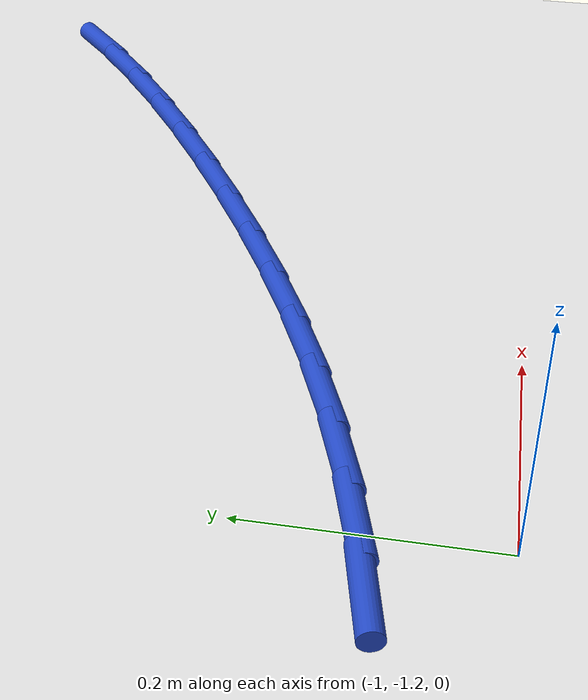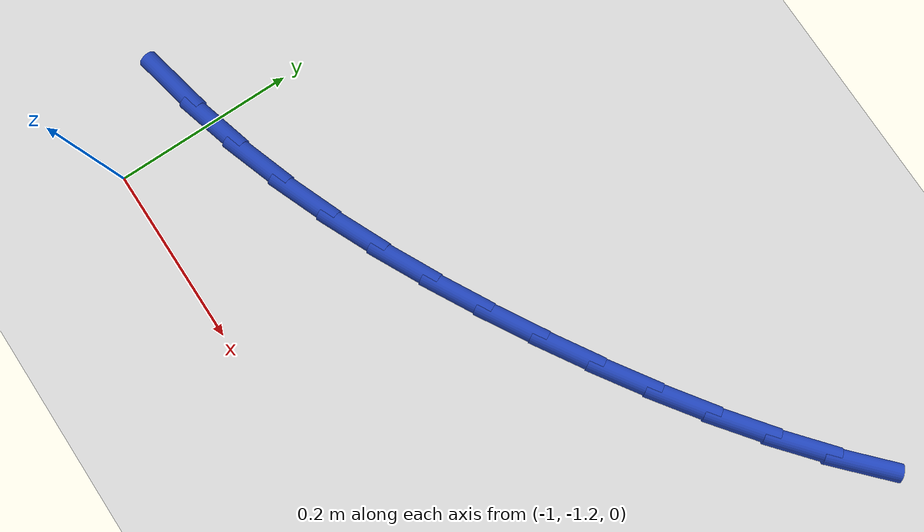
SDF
<sdf version="1.6">
 <world name="default">
  <model name="ground_plane">
   <static>1</static>
   <link name="link">
    <collision name="collision">
     <geometry><plane><normal>0 0 1</normal><size>100 100</size></plane></geometry>
     <surface><friction><ode><mu>100</mu><mu2>50</mu2></ode></friction></surface>
    </collision>
    <visual name="visual">
     <cast_shadows>0</cast_shadows>
     <geometry><plane><normal>0 0 1</normal><size>100 100</size></plane></geometry>
     <material>
      <script><uri>file://media/materials/scripts/gazebo.material</uri><name>Gazebo/WhiteGlow</name></script>
     </material>
    </visual>
   </link>
  </model>
  <model name="line">
   <link name="link_84">
    <pose>-1.0555271077297053 -1.1015150530781048 0.01 0 1.57 0.21131374475451825</pose>
    <collision name="collision">
     <geometry><cylinder><radius>0.01</radius><length>0.08</length></cylinder></geometry>
    </collision>
    <visual name="visual">
     <material>
      <script><name>Gazebo/Blue</name><uri>file://media/materials/scripts/gazebo.material</uri></script>
     </material>
     <geometry><cylinder><radius>0.01</radius><length>0.08</length></cylinder></geometry>
    </visual>
   </link>
   <link name="link_85">
    <pose>-0.9938081638484251 -1.0882753362107238 0.01 0 1.57 0.27120433528052956</pose>
    <collision name="collision">
     <geometry><cylinder><radius>0.01</radius><length>0.08</length></cylinder></geometry>
    </collision>
    <visual name="visual">
     <material>
      <script><name>Gazebo/Blue</name><uri>file://media/materials/scripts/gazebo.material</uri></script>
     </material>
     <geometry><cylinder><radius>0.01</radius><length>0.08</length></cylinder></geometry>
    </visual>
   </link>
   <link name="link_86">
    <pose>-0.9331563969446333 -1.0714108000525764 0.01 0 1.57 0.3261330889908135</pose>
    <collision name="collision">
     <geometry><cylinder><radius>0.01</radius><length>0.08</length></cylinder></geometry>
    </collision>
    <visual name="visual">
     <material>
      <script><name>Gazebo/Blue</name><uri>file://media/materials/scripts/gazebo.material</uri></script>
     </material>
     <geometry><cylinder><radius>0.01</radius><length>0.08</length></cylinder></geometry>
    </visual>
   </link>
   <link name="link_87">
    <pose>-0.873512858399665 -1.0512387605841795 0.01 0 1.57 0.37586425813499214</pose>
    <collision name="collision">
     <geometry><cylinder><radius>0.01</radius><length>0.08</length></cylinder></geometry>
    </collision>
    <visual name="visual">
     <material>
      <script><name>Gazebo/Blue</name><uri>file://media/materials/scripts/gazebo.material</uri></script>
     </material>
     <geometry><cylinder><radius>0.01</radius><length>0.08</length></cylinder></geometry>
    </visual>
   </link>
   <link name="link_88">
    <pose>-0.8148185995948587 -1.0280765337860496 0.01 0 1.57 0.42030935409472464</pose>
    <collision name="collision">
     <geometry><cylinder><radius>0.01</radius><length>0.08</length></cylinder></geometry>
    </collision>
    <visual name="visual">
     <material>
      <script><name>Gazebo/Blue</name><uri>file://media/materials/scripts/gazebo.material</uri></script>
     </material>
     <geometry><cylinder><radius>0.01</radius><length>0.08</length></cylinder></geometry>
    </visual>
   </link>
   <link name="link_89">
    <pose>-0.7570146719115483 -1.002241435638702 0.01 0 1.57 0.45948796046870727</pose>
    <collision name="collision">
     <geometry><cylinder><radius>0.01</radius><length>0.08</length></cylinder></geometry>
    </collision>
    <visual name="visual">
     <material>
      <script><name>Gazebo/Blue</name><uri>file://media/materials/scripts/gazebo.material</uri></script>
     </material>
     <geometry><cylinder><radius>0.01</radius><length>0.08</length></cylinder></geometry>
    </visual>
   </link>
   <link name="link_90">
    <pose>-0.7000421267310727 -0.9740507821226548 0.01 0 1.57 0.493490116932837</pose>
    <collision name="collision">
     <geometry><cylinder><radius>0.01</radius><length>0.08</length></cylinder></geometry>
    </collision>
    <visual name="visual">
     <material>
      <script><name>Gazebo/Blue</name><uri>file://media/materials/scripts/gazebo.material</uri></script>
     </material>
     <geometry><cylinder><radius>0.01</radius><length>0.08</length></cylinder></geometry>
    </visual>
   </link>
   <link name="link_91">
    <pose>-0.6438420154347665 -0.943821889218423 0.01 0 1.57 0.522443644792108</pose>
    <collision name="collision">
     <geometry><cylinder><radius>0.01</radius><length>0.08</length></cylinder></geometry>
    </collision>
    <visual name="visual">
     <material>
      <script><name>Gazebo/Blue</name><uri>file://media/materials/scripts/gazebo.material</uri></script>
     </material>
     <geometry><cylinder><radius>0.01</radius><length>0.08</length></cylinder></geometry>
    </visual>
   </link>
   <link name="link_92">
    <pose>-0.5883553894039677 -0.9118720729065243 0.01 0 1.57 0.5477929707720183</pose>
    <collision name="collision">
     <geometry><cylinder><radius>0.01</radius><length>0.08</length></cylinder></geometry>
    </collision>
    <visual name="visual">
     <material>
      <script><name>Gazebo/Blue</name><uri>file://media/materials/scripts/gazebo.material</uri></script>
     </material>
     <geometry><cylinder><radius>0.01</radius><length>0.08</length></cylinder></geometry>
    </visual>
   </link>
   <link name="link_93">
    <pose>-0.5335784454164553 -0.8784541567226192 0.01 0 1.57 0.5761142137925336</pose>
    <collision name="collision">
     <geometry><cylinder><radius>0.01</radius><length>0.08</length></cylinder></geometry>
    </collision>
    <visual name="visual">
     <material>
      <script><name>Gazebo/Blue</name><uri>file://media/materials/scripts/gazebo.material</uri></script>
     </material>
     <geometry><cylinder><radius>0.01</radius><length>0.08</length></cylinder></geometry>
    </visual>
   </link>
   <link name="link_94">
    <pose>-0.4797783495726234 -0.8435040660526961 0.01 0 1.57 0.6096049255709497</pose>
    <collision name="collision">
     <geometry><cylinder><radius>0.01</radius><length>0.08</length></cylinder></geometry>
    </collision>
    <visual name="visual">
     <material>
      <script><name>Gazebo/Blue</name><uri>file://media/materials/scripts/gazebo.material</uri></script>
     </material>
     <geometry><cylinder><radius>0.01</radius><length>0.08</length></cylinder></geometry>
    </visual>
   </link>
   <link name="link_95">
    <pose>-0.42730535865874814 -0.8068605518706807 0.01 0 1.57 0.6485407348112814</pose>
    <collision name="collision">
     <geometry><cylinder><radius>0.01</radius><length>0.08</length></cylinder></geometry>
    </collision>
    <visual name="visual">
     <material>
      <script><name>Gazebo/Blue</name><uri>file://media/materials/scripts/gazebo.material</uri></script>
     </material>
     <geometry><cylinder><radius>0.01</radius><length>0.08</length></cylinder></geometry>
    </visual>
   </link>
   <link name="link_96">
    <pose>-0.3765097512823106 -0.768362339630641 0.01 0 1.57 0.6932143482318247</pose>
    <collision name="collision">
     <geometry><cylinder><radius>0.01</radius><length>0.08</length></cylinder></geometry>
    </collision>
    <visual name="visual">
     <material>
      <script><name>Gazebo/Blue</name><uri>file://media/materials/scripts/gazebo.material</uri></script>
     </material>
     <geometry><cylinder><radius>0.01</radius><length>0.08</length></cylinder></geometry>
    </visual>
   </link>
   <link name="link_97">
    <pose>-0.3277418060507899 -0.727848154786644 0.01 0 1.57 0.7439029923140598</pose>
    <collision name="collision">
     <geometry><cylinder><radius>0.01</radius><length>0.08</length></cylinder></geometry>
    </collision>
    <visual name="visual">
     <material>
      <script><name>Gazebo/Blue</name><uri>file://media/materials/scripts/gazebo.material</uri></script>
     </material>
     <geometry><cylinder><radius>0.01</radius><length>0.08</length></cylinder></geometry>
    </visual>
   </link>
  </model>
 </world>
</sdf>
